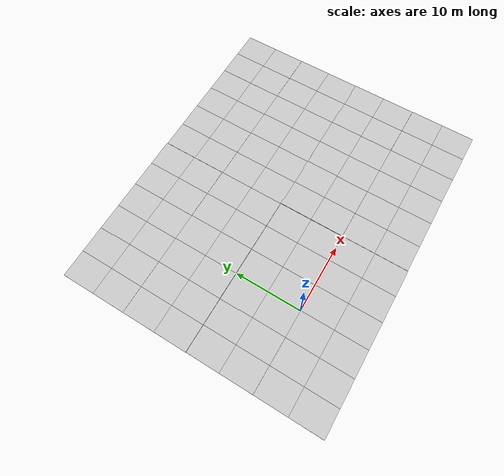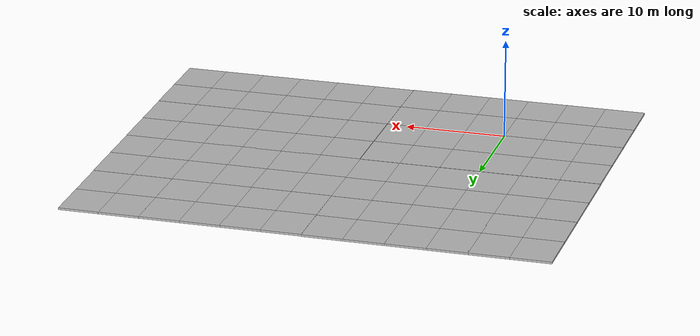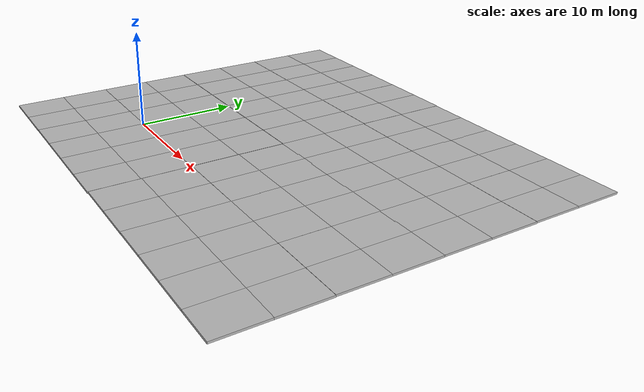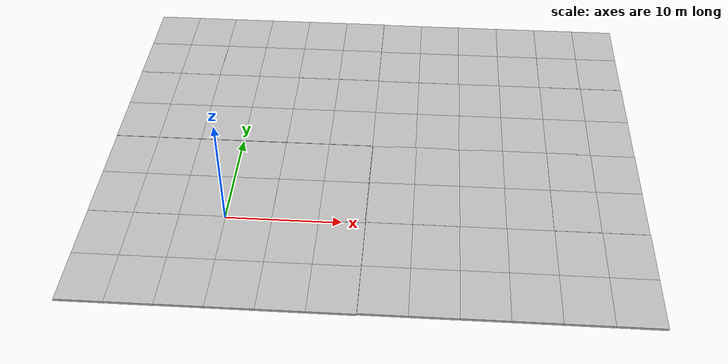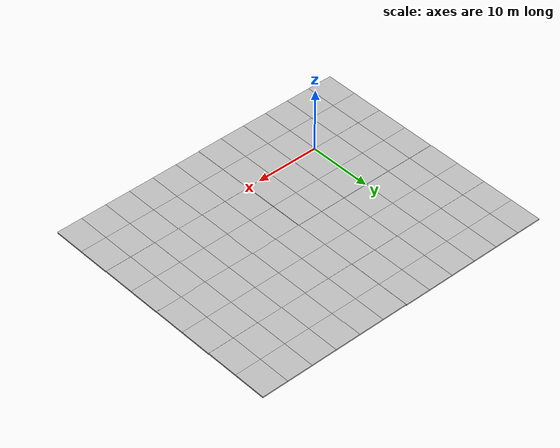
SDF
<sdf version="1.6">
 <model name="big_mud">
  <model name="big_mud">
   <model name="mud_box">
    <static>1</static>
    <link name="link">
     <collision name="collision"><geometry><box><size>100 100 0.2</size></box></geometry></collision>
     <visual name="visual_1">
      <pose>-2 2.5 0 0 -0 0</pose>
      <cast_shadows>0</cast_shadows>
      <geometry><box><size>4 5 0.2</size></box></geometry>
      <material>
       <script>
        <uri>model://mud_box/materials/scripts</uri>
        <uri>model://mud_box/materials/textures</uri>
        <name>vrc/mud</name>
       </script>
      </material>
     </visual>
     <visual name="visual_2">
      <pose>2 2.5 0 0 -0 0</pose>
      <cast_shadows>0</cast_shadows>
      <geometry><box><size>4 5 0.2</size></box></geometry>
      <material>
       <script>
        <uri>model://mud_box/materials/scripts</uri>
        <uri>model://mud_box/materials/textures</uri>
        <name>vrc/mud</name>
       </script>
      </material>
     </visual>
     <visual name="visual_3">
      <pose>2 -2.5 0 0 -0 0</pose>
      <cast_shadows>0</cast_shadows>
      <geometry><box><size>4 5 0.2</size></box></geometry>
      <material>
       <script>
        <uri>model://mud_box/materials/scripts</uri>
        <uri>model://mud_box/materials/textures</uri>
        <name>vrc/mud</name>
       </script>
      </material>
     </visual>
     <visual name="visual_4">
      <pose>-2 -2.5 0 0 -0 0</pose>
      <cast_shadows>0</cast_shadows>
      <geometry><box><size>4 5 0.2</size></box></geometry>
      <material>
       <script>
        <uri>model://mud_box/materials/scripts</uri>
        <uri>model://mud_box/materials/textures</uri>
        <name>vrc/mud</name>
       </script>
      </material>
     </visual>
    </link>
    <pose>-0.040479 4.99985 0 0 -0 0</pose>
   </model>
   <model name="mud_box_0">
    <static>1</static>
    <link name="link">
     <collision name="collision"><geometry><box><size>8 10 0.2</size></box></geometry></collision>
     <visual name="visual_1">
      <pose>-2 2.5 0 0 -0 0</pose>
      <cast_shadows>0</cast_shadows>
      <geometry><box><size>4 5 0.2</size></box></geometry>
      <material>
       <script>
        <uri>model://mud_box/materials/scripts</uri>
        <uri>model://mud_box/materials/textures</uri>
        <name>vrc/mud</name>
       </script>
      </material>
     </visual>
     <visual name="visual_2">
      <pose>2 2.5 0 0 -0 0</pose>
      <cast_shadows>0</cast_shadows>
      <geometry><box><size>4 5 0.2</size></box></geometry>
      <material>
       <script>
        <uri>model://mud_box/materials/scripts</uri>
        <uri>model://mud_box/materials/textures</uri>
        <name>vrc/mud</name>
       </script>
      </material>
     </visual>
     <visual name="visual_3">
      <pose>2 -2.5 0 0 -0 0</pose>
      <cast_shadows>0</cast_shadows>
      <geometry><box><size>4 5 0.2</size></box></geometry>
      <material>
       <script>
        <uri>model://mud_box/materials/scripts</uri>
        <uri>model://mud_box/materials/textures</uri>
        <name>vrc/mud</name>
       </script>
      </material>
     </visual>
     <visual name="visual_4">
      <pose>-2 -2.5 0 0 -0 0</pose>
      <cast_shadows>0</cast_shadows>
      <geometry><box><size>4 5 0.2</size></box></geometry>
      <material>
       <script>
        <uri>model://mud_box/materials/scripts</uri>
        <uri>model://mud_box/materials/textures</uri>
        <name>vrc/mud</name>
       </script>
      </material>
     </visual>
    </link>
    <pose>7.96088 5.01054 0 0 -0 0</pose>
   </model>
   <model name="mud_box_clone">
    <static>1</static>
    <link name="link">
     <collision name="collision"><geometry><box><size>8 10 0.2</size></box></geometry></collision>
     <visual name="visual_1">
      <pose>-2 2.5 0 0 -0 0</pose>
      <cast_shadows>0</cast_shadows>
      <geometry><box><size>4 5 0.2</size></box></geometry>
      <material>
       <script>
        <uri>model://mud_box/materials/scripts</uri>
        <uri>model://mud_box/materials/textures</uri>
        <name>vrc/mud</name>
       </script>
      </material>
     </visual>
     <visual name="visual_2">
      <pose>2 2.5 0 0 -0 0</pose>
      <cast_shadows>0</cast_shadows>
      <geometry><box><size>4 5 0.2</size></box></geometry>
      <material>
       <script>
        <uri>model://mud_box/materials/scripts</uri>
        <uri>model://mud_box/materials/textures</uri>
        <name>vrc/mud</name>
       </script>
      </material>
     </visual>
     <visual name="visual_3">
      <pose>2 -2.5 0 0 -0 0</pose>
      <cast_shadows>0</cast_shadows>
      <geometry><box><size>4 5 0.2</size></box></geometry>
      <material>
       <script>
        <uri>model://mud_box/materials/scripts</uri>
        <uri>model://mud_box/materials/textures</uri>
        <name>vrc/mud</name>
       </script>
      </material>
     </visual>
     <visual name="visual_4">
      <pose>-2 -2.5 0 0 -0 0</pose>
      <cast_shadows>0</cast_shadows>
      <geometry><box><size>4 5 0.2</size></box></geometry>
      <material>
       <script>
        <uri>model://mud_box/materials/scripts</uri>
        <uri>model://mud_box/materials/textures</uri>
        <name>vrc/mud</name>
       </script>
      </material>
     </visual>
    </link>
    <pose>8.00404 -5.00098 0 0 -0 0</pose>
   </model>
   <model name="mud_box_clone_0">
    <static>1</static>
    <link name="link">
     <collision name="collision"><geometry><box><size>8 10 0.2</size></box></geometry></collision>
     <visual name="visual_1">
      <pose>-2 2.5 0 0 -0 0</pose>
      <cast_shadows>0</cast_shadows>
      <geometry><box><size>4 5 0.2</size></box></geometry>
      <material>
       <script>
        <uri>model://mud_box/materials/scripts</uri>
        <uri>model://mud_box/materials/textures</uri>
        <name>vrc/mud</name>
       </script>
      </material>
     </visual>
     <visual name="visual_2">
      <pose>2 2.5 0 0 -0 0</pose>
      <cast_shadows>0</cast_shadows>
      <geometry><box><size>4 5 0.2</size></box></geometry>
      <material>
       <script>
        <uri>model://mud_box/materials/scripts</uri>
        <uri>model://mud_box/materials/textures</uri>
        <name>vrc/mud</name>
       </script>
      </material>
     </visual>
     <visual name="visual_3">
      <pose>2 -2.5 0 0 -0 0</pose>
      <cast_shadows>0</cast_shadows>
      <geometry><box><size>4 5 0.2</size></box></geometry>
      <material>
       <script>
        <uri>model://mud_box/materials/scripts</uri>
        <uri>model://mud_box/materials/textures</uri>
        <name>vrc/mud</name>
       </script>
      </material>
     </visual>
     <visual name="visual_4">
      <pose>-2 -2.5 0 0 -0 0</pose>
      <cast_shadows>0</cast_shadows>
      <geometry><box><size>4 5 0.2</size></box></geometry>
      <material>
       <script>
        <uri>model://mud_box/materials/scripts</uri>
        <uri>model://mud_box/materials/textures</uri>
        <name>vrc/mud</name>
       </script>
      </material>
     </visual>
    </link>
    <pose>-7.97159 4.99756 0 0 -0 0</pose>
   </model>
   <model name="mud_box_clone_0_clone">
    <static>1</static>
    <link name="link">
     <collision name="collision"><geometry><box><size>8 10 0.2</size></box></geometry></collision>
     <visual name="visual_1">
      <pose>-2 2.5 0 0 -0 0</pose>
      <cast_shadows>0</cast_shadows>
      <geometry><box><size>4 5 0.2</size></box></geometry>
      <material>
       <script>
        <uri>model://mud_box/materials/scripts</uri>
        <uri>model://mud_box/materials/textures</uri>
        <name>vrc/mud</name>
       </script>
      </material>
     </visual>
     <visual name="visual_2">
      <pose>2 2.5 0 0 -0 0</pose>
      <cast_shadows>0</cast_shadows>
      <geometry><box><size>4 5 0.2</size></box></geometry>
      <material>
       <script>
        <uri>model://mud_box/materials/scripts</uri>
        <uri>model://mud_box/materials/textures</uri>
        <name>vrc/mud</name>
       </script>
      </material>
     </visual>
     <visual name="visual_3">
      <pose>2 -2.5 0 0 -0 0</pose>
      <cast_shadows>0</cast_shadows>
      <geometry><box><size>4 5 0.2</size></box></geometry>
      <material>
       <script>
        <uri>model://mud_box/materials/scripts</uri>
        <uri>model://mud_box/materials/textures</uri>
        <name>vrc/mud</name>
       </script>
      </material>
     </visual>
     <visual name="visual_4">
      <pose>-2 -2.5 0 0 -0 0</pose>
      <cast_shadows>0</cast_shadows>
      <geometry><box><size>4 5 0.2</size></box></geometry>
      <material>
       <script>
        <uri>model://mud_box/materials/scripts</uri>
        <uri>model://mud_box/materials/textures</uri>
        <name>vrc/mud</name>
       </script>
      </material>
     </visual>
    </link>
    <pose>-7.96387 -5.00926 0 0 -0 0</pose>
   </model>
   <model name="mud_box_clone_clone">
    <static>1</static>
    <link name="link">
     <collision name="collision"><geometry><box><size>8 10 0.2</size></box></geometry></collision>
     <visual name="visual_1">
      <pose>-2 2.5 0 0 -0 0</pose>
      <cast_shadows>0</cast_shadows>
      <geometry><box><size>4 5 0.2</size></box></geometry>
      <material>
       <script>
        <uri>model://mud_box/materials/scripts</uri>
        <uri>model://mud_box/materials/textures</uri>
        <name>vrc/mud</name>
       </script>
      </material>
     </visual>
     <visual name="visual_2">
      <pose>2 2.5 0 0 -0 0</pose>
      <cast_shadows>0</cast_shadows>
      <geometry><box><size>4 5 0.2</size></box></geometry>
      <material>
       <script>
        <uri>model://mud_box/materials/scripts</uri>
        <uri>model://mud_box/materials/textures</uri>
        <name>vrc/mud</name>
       </script>
      </material>
     </visual>
     <visual name="visual_3">
      <pose>2 -2.5 0 0 -0 0</pose>
      <cast_shadows>0</cast_shadows>
      <geometry><box><size>4 5 0.2</size></box></geometry>
      <material>
       <script>
        <uri>model://mud_box/materials/scripts</uri>
        <uri>model://mud_box/materials/textures</uri>
        <name>vrc/mud</name>
       </script>
      </material>
     </visual>
     <visual name="visual_4">
      <pose>-2 -2.5 0 0 -0 0</pose>
      <cast_shadows>0</cast_shadows>
      <geometry><box><size>4 5 0.2</size></box></geometry>
      <material>
       <script>
        <uri>model://mud_box/materials/scripts</uri>
        <uri>model://mud_box/materials/textures</uri>
        <name>vrc/mud</name>
       </script>
      </material>
     </visual>
    </link>
    <pose>0.011012 -4.9977 0 0 -0 0</pose>
   </model>
   <static>0</static>
   <pose>-0.037889 20.0397 0 0 -0 0</pose>
  </model>
  <model name="big_mud_0">
   <model name="mud_box">
    <static>1</static>
    <link name="link">
     <collision name="collision"><geometry><box><size>8 10 0.2</size></box></geometry></collision>
     <visual name="visual_1">
      <pose>-2 2.5 0 0 -0 0</pose>
      <cast_shadows>0</cast_shadows>
      <geometry><box><size>4 5 0.2</size></box></geometry>
      <material>
       <script>
        <uri>model://mud_box/materials/scripts</uri>
        <uri>model://mud_box/materials/textures</uri>
        <name>vrc/mud</name>
       </script>
      </material>
     </visual>
     <visual name="visual_2">
      <pose>2 2.5 0 0 -0 0</pose>
      <cast_shadows>0</cast_shadows>
      <geometry><box><size>4 5 0.2</size></box></geometry>
      <material>
       <script>
        <uri>model://mud_box/materials/scripts</uri>
        <uri>model://mud_box/materials/textures</uri>
        <name>vrc/mud</name>
       </script>
      </material>
     </visual>
     <visual name="visual_3">
      <pose>2 -2.5 0 0 -0 0</pose>
      <cast_shadows>0</cast_shadows>
      <geometry><box><size>4 5 0.2</size></box></geometry>
      <material>
       <script>
        <uri>model://mud_box/materials/scripts</uri>
        <uri>model://mud_box/materials/textures</uri>
        <name>vrc/mud</name>
       </script>
      </material>
     </visual>
     <visual name="visual_4">
      <pose>-2 -2.5 0 0 -0 0</pose>
      <cast_shadows>0</cast_shadows>
      <geometry><box><size>4 5 0.2</size></box></geometry>
      <material>
       <script>
        <uri>model://mud_box/materials/scripts</uri>
        <uri>model://mud_box/materials/textures</uri>
        <name>vrc/mud</name>
       </script>
      </material>
     </visual>
    </link>
    <pose>-0.040479 4.99985 0 0 -0 0</pose>
   </model>
   <model name="mud_box_0">
    <static>1</static>
    <link name="link">
     <collision name="collision"><geometry><box><size>8 10 0.2</size></box></geometry></collision>
     <visual name="visual_1">
      <pose>-2 2.5 0 0 -0 0</pose>
      <cast_shadows>0</cast_shadows>
      <geometry><box><size>4 5 0.2</size></box></geometry>
      <material>
       <script>
        <uri>model://mud_box/materials/scripts</uri>
        <uri>model://mud_box/materials/textures</uri>
        <name>vrc/mud</name>
       </script>
      </material>
     </visual>
     <visual name="visual_2">
      <pose>2 2.5 0 0 -0 0</pose>
      <cast_shadows>0</cast_shadows>
      <geometry><box><size>4 5 0.2</size></box></geometry>
      <material>
       <script>
        <uri>model://mud_box/materials/scripts</uri>
        <uri>model://mud_box/materials/textures</uri>
        <name>vrc/mud</name>
       </script>
      </material>
     </visual>
     <visual name="visual_3">
      <pose>2 -2.5 0 0 -0 0</pose>
      <cast_shadows>0</cast_shadows>
      <geometry><box><size>4 5 0.2</size></box></geometry>
      <material>
       <script>
        <uri>model://mud_box/materials/scripts</uri>
        <uri>model://mud_box/materials/textures</uri>
        <name>vrc/mud</name>
       </script>
      </material>
     </visual>
     <visual name="visual_4">
      <pose>-2 -2.5 0 0 -0 0</pose>
      <cast_shadows>0</cast_shadows>
      <geometry><box><size>4 5 0.2</size></box></geometry>
      <material>
       <script>
        <uri>model://mud_box/materials/scripts</uri>
        <uri>model://mud_box/materials/textures</uri>
        <name>vrc/mud</name>
       </script>
      </material>
     </visual>
    </link>
    <pose>7.96088 5.01054 0 0 -0 0</pose>
   </model>
   <model name="mud_box_clone">
    <static>1</static>
    <link name="link">
     <collision name="collision"><geometry><box><size>8 10 0.2</size></box></geometry></collision>
     <visual name="visual_1">
      <pose>-2 2.5 0 0 -0 0</pose>
      <cast_shadows>0</cast_shadows>
      <geometry><box><size>4 5 0.2</size></box></geometry>
      <material>
       <script>
        <uri>model://mud_box/materials/scripts</uri>
        <uri>model://mud_box/materials/textures</uri>
        <name>vrc/mud</name>
       </script>
      </material>
     </visual>
     <visual name="visual_2">
      <pose>2 2.5 0 0 -0 0</pose>
      <cast_shadows>0</cast_shadows>
      <geometry><box><size>4 5 0.2</size></box></geometry>
      <material>
       <script>
        <uri>model://mud_box/materials/scripts</uri>
        <uri>model://mud_box/materials/textures</uri>
        <name>vrc/mud</name>
       </script>
      </material>
     </visual>
     <visual name="visual_3">
      <pose>2 -2.5 0 0 -0 0</pose>
      <cast_shadows>0</cast_shadows>
      <geometry><box><size>4 5 0.2</size></box></geometry>
      <material>
       <script>
        <uri>model://mud_box/materials/scripts</uri>
        <uri>model://mud_box/materials/textures</uri>
        <name>vrc/mud</name>
       </script>
      </material>
     </visual>
     <visual name="visual_4">
      <pose>-2 -2.5 0 0 -0 0</pose>
      <cast_shadows>0</cast_shadows>
      <geometry><box><size>4 5 0.2</size></box></geometry>
      <material>
       <script>
        <uri>model://mud_box/materials/scripts</uri>
        <uri>model://mud_box/materials/textures</uri>
        <name>vrc/mud</name>
       </script>
      </material>
     </visual>
    </link>
    <pose>8.00404 -5.00098 0 0 -0 0</pose>
   </model>
   <model name="mud_box_clone_0">
    <static>1</static>
    <link name="link">
     <collision name="collision"><geometry><box><size>8 10 0.2</size></box></geometry></collision>
     <visual name="visual_1">
      <pose>-2 2.5 0 0 -0 0</pose>
      <cast_shadows>0</cast_shadows>
      <geometry><box><size>4 5 0.2</size></box></geometry>
      <material>
       <script>
        <uri>model://mud_box/materials/scripts</uri>
        <uri>model://mud_box/materials/textures</uri>
        <name>vrc/mud</name>
       </script>
      </material>
     </visual>
     <visual name="visual_2">
      <pose>2 2.5 0 0 -0 0</pose>
      <cast_shadows>0</cast_shadows>
      <geometry><box><size>4 5 0.2</size></box></geometry>
      <material>
       <script>
        <uri>model://mud_box/materials/scripts</uri>
        <uri>model://mud_box/materials/textures</uri>
        <name>vrc/mud</name>
       </script>
      </material>
     </visual>
     <visual name="visual_3">
      <pose>2 -2.5 0 0 -0 0</pose>
      <cast_shadows>0</cast_shadows>
      <geometry><box><size>4 5 0.2</size></box></geometry>
      <material>
       <script>
        <uri>model://mud_box/materials/scripts</uri>
        <uri>model://mud_box/materials/textures</uri>
        <name>vrc/mud</name>
       </script>
      </material>
     </visual>
     <visual name="visual_4">
      <pose>-2 -2.5 0 0 -0 0</pose>
      <cast_shadows>0</cast_shadows>
      <geometry><box><size>4 5 0.2</size></box></geometry>
      <material>
       <script>
        <uri>model://mud_box/materials/scripts</uri>
        <uri>model://mud_box/materials/textures</uri>
        <name>vrc/mud</name>
       </script>
      </material>
     </visual>
    </link>
    <pose>-7.97159 4.99756 0 0 -0 0</pose>
   </model>
   <model name="mud_box_clone_0_clone">
    <static>1</static>
    <link name="link">
     <collision name="collision"><geometry><box><size>8 10 0.2</size></box></geometry></collision>
     <visual name="visual_1">
      <pose>-2 2.5 0 0 -0 0</pose>
      <cast_shadows>0</cast_shadows>
      <geometry><box><size>4 5 0.2</size></box></geometry>
      <material>
       <script>
        <uri>model://mud_box/materials/scripts</uri>
        <uri>model://mud_box/materials/textures</uri>
        <name>vrc/mud</name>
       </script>
      </material>
     </visual>
     <visual name="visual_2">
      <pose>2 2.5 0 0 -0 0</pose>
      <cast_shadows>0</cast_shadows>
      <geometry><box><size>4 5 0.2</size></box></geometry>
      <material>
       <script>
        <uri>model://mud_box/materials/scripts</uri>
        <uri>model://mud_box/materials/textures</uri>
        <name>vrc/mud</name>
       </script>
      </material>
     </visual>
     <visual name="visual_3">
      <pose>2 -2.5 0 0 -0 0</pose>
      <cast_shadows>0</cast_shadows>
      <geometry><box><size>4 5 0.2</size></box></geometry>
      <material>
       <script>
        <uri>model://mud_box/materials/scripts</uri>
        <uri>model://mud_box/materials/textures</uri>
        <name>vrc/mud</name>
       </script>
      </material>
     </visual>
     <visual name="visual_4">
      <pose>-2 -2.5 0 0 -0 0</pose>
      <cast_shadows>0</cast_shadows>
      <geometry><box><size>4 5 0.2</size></box></geometry>
      <material>
       <script>
        <uri>model://mud_box/materials/scripts</uri>
        <uri>model://mud_box/materials/textures</uri>
        <name>vrc/mud</name>
       </script>
      </material>
     </visual>
    </link>
    <pose>-7.96387 -5.00926 0 0 -0 0</pose>
   </model>
   <model name="mud_box_clone_clone">
    <static>1</static>
    <link name="link">
     <collision name="collision"><geometry><box><size>8 10 0.2</size></box></geometry></collision>
     <visual name="visual_1">
      <pose>-2 2.5 0 0 -0 0</pose>
      <cast_shadows>0</cast_shadows>
      <geometry><box><size>4 5 0.2</size></box></geometry>
      <material>
       <script>
        <uri>model://mud_box/materials/scripts</uri>
        <uri>model://mud_box/materials/textures</uri>
        <name>vrc/mud</name>
       </script>
      </material>
     </visual>
     <visual name="visual_2">
      <pose>2 2.5 0 0 -0 0</pose>
      <cast_shadows>0</cast_shadows>
      <geometry><box><size>4 5 0.2</size></box></geometry>
      <material>
       <script>
        <uri>model://mud_box/materials/scripts</uri>
        <uri>model://mud_box/materials/textures</uri>
        <name>vrc/mud</name>
       </script>
      </material>
     </visual>
     <visual name="visual_3">
      <pose>2 -2.5 0 0 -0 0</pose>
      <cast_shadows>0</cast_shadows>
      <geometry><box><size>4 5 0.2</size></box></geometry>
      <material>
       <script>
        <uri>model://mud_box/materials/scripts</uri>
        <uri>model://mud_box/materials/textures</uri>
        <name>vrc/mud</name>
       </script>
      </material>
     </visual>
     <visual name="visual_4">
      <pose>-2 -2.5 0 0 -0 0</pose>
      <cast_shadows>0</cast_shadows>
      <geometry><box><size>4 5 0.2</size></box></geometry>
      <material>
       <script>
        <uri>model://mud_box/materials/scripts</uri>
        <uri>model://mud_box/materials/textures</uri>
        <name>vrc/mud</name>
       </script>
      </material>
     </visual>
    </link>
    <pose>0.011012 -4.9977 0 0 -0 0</pose>
   </model>
   <static>0</static>
   <pose>23.9817 0.073412 0 0 -0 0</pose>
  </model>
  <model name="big_mud_1">
   <model name="mud_box">
    <static>1</static>
    <link name="link">
     <collision name="collision"><geometry><box><size>8 10 0.2</size></box></geometry></collision>
     <visual name="visual_1">
      <pose>-2 2.5 0 0 -0 0</pose>
      <cast_shadows>0</cast_shadows>
      <geometry><box><size>4 5 0.2</size></box></geometry>
      <material>
       <script>
        <uri>model://mud_box/materials/scripts</uri>
        <uri>model://mud_box/materials/textures</uri>
        <name>vrc/mud</name>
       </script>
      </material>
     </visual>
     <visual name="visual_2">
      <pose>2 2.5 0 0 -0 0</pose>
      <cast_shadows>0</cast_shadows>
      <geometry><box><size>4 5 0.2</size></box></geometry>
      <material>
       <script>
        <uri>model://mud_box/materials/scripts</uri>
        <uri>model://mud_box/materials/textures</uri>
        <name>vrc/mud</name>
       </script>
      </material>
     </visual>
     <visual name="visual_3">
      <pose>2 -2.5 0 0 -0 0</pose>
      <cast_shadows>0</cast_shadows>
      <geometry><box><size>4 5 0.2</size></box></geometry>
      <material>
       <script>
        <uri>model://mud_box/materials/scripts</uri>
        <uri>model://mud_box/materials/textures</uri>
        <name>vrc/mud</name>
       </script>
      </material>
     </visual>
     <visual name="visual_4">
      <pose>-2 -2.5 0 0 -0 0</pose>
      <cast_shadows>0</cast_shadows>
      <geometry><box><size>4 5 0.2</size></box></geometry>
      <material>
       <script>
        <uri>model://mud_box/materials/scripts</uri>
        <uri>model://mud_box/materials/textures</uri>
        <name>vrc/mud</name>
       </script>
      </material>
     </visual>
    </link>
    <pose>-0.040479 4.99985 0 0 -0 0</pose>
   </model>
   <model name="mud_box_0">
    <static>1</static>
    <link name="link">
     <collision name="collision"><geometry><box><size>8 10 0.2</size></box></geometry></collision>
     <visual name="visual_1">
      <pose>-2 2.5 0 0 -0 0</pose>
      <cast_shadows>0</cast_shadows>
      <geometry><box><size>4 5 0.2</size></box></geometry>
      <material>
       <script>
        <uri>model://mud_box/materials/scripts</uri>
        <uri>model://mud_box/materials/textures</uri>
        <name>vrc/mud</name>
       </script>
      </material>
     </visual>
     <visual name="visual_2">
      <pose>2 2.5 0 0 -0 0</pose>
      <cast_shadows>0</cast_shadows>
      <geometry><box><size>4 5 0.2</size></box></geometry>
      <material>
       <script>
        <uri>model://mud_box/materials/scripts</uri>
        <uri>model://mud_box/materials/textures</uri>
        <name>vrc/mud</name>
       </script>
      </material>
     </visual>
     <visual name="visual_3">
      <pose>2 -2.5 0 0 -0 0</pose>
      <cast_shadows>0</cast_shadows>
      <geometry><box><size>4 5 0.2</size></box></geometry>
      <material>
       <script>
        <uri>model://mud_box/materials/scripts</uri>
        <uri>model://mud_box/materials/textures</uri>
        <name>vrc/mud</name>
       </script>
      </material>
     </visual>
     <visual name="visual_4">
      <pose>-2 -2.5 0 0 -0 0</pose>
      <cast_shadows>0</cast_shadows>
      <geometry><box><size>4 5 0.2</size></box></geometry>
      <material>
       <script>
        <uri>model://mud_box/materials/scripts</uri>
        <uri>model://mud_box/materials/textures</uri>
        <name>vrc/mud</name>
       </script>
      </material>
     </visual>
    </link>
    <pose>7.96088 5.01054 0 0 -0 0</pose>
   </model>
   <model name="mud_box_clone">
    <static>1</static>
    <link name="link">
     <collision name="collision"><geometry><box><size>8 10 0.2</size></box></geometry></collision>
     <visual name="visual_1">
      <pose>-2 2.5 0 0 -0 0</pose>
      <cast_shadows>0</cast_shadows>
      <geometry><box><size>4 5 0.2</size></box></geometry>
      <material>
       <script>
        <uri>model://mud_box/materials/scripts</uri>
        <uri>model://mud_box/materials/textures</uri>
        <name>vrc/mud</name>
       </script>
      </material>
     </visual>
     <visual name="visual_2">
      <pose>2 2.5 0 0 -0 0</pose>
      <cast_shadows>0</cast_shadows>
      <geometry><box><size>4 5 0.2</size></box></geometry>
      <material>
       <script>
        <uri>model://mud_box/materials/scripts</uri>
        <uri>model://mud_box/materials/textures</uri>
        <name>vrc/mud</name>
       </script>
      </material>
     </visual>
     <visual name="visual_3">
      <pose>2 -2.5 0 0 -0 0</pose>
      <cast_shadows>0</cast_shadows>
      <geometry><box><size>4 5 0.2</size></box></geometry>
      <material>
       <script>
        <uri>model://mud_box/materials/scripts</uri>
        <uri>model://mud_box/materials/textures</uri>
        <name>vrc/mud</name>
       </script>
      </material>
     </visual>
     <visual name="visual_4">
      <pose>-2 -2.5 0 0 -0 0</pose>
      <cast_shadows>0</cast_shadows>
      <geometry><box><size>4 5 0.2</size></box></geometry>
      <material>
       <script>
        <uri>model://mud_box/materials/scripts</uri>
        <uri>model://mud_box/materials/textures</uri>
        <name>vrc/mud</name>
       </script>
      </material>
     </visual>
    </link>
    <pose>8.00404 -5.00098 0 0 -0 0</pose>
   </model>
   <model name="mud_box_clone_0">
    <static>1</static>
    <link name="link">
     <collision name="collision"><geometry><box><size>8 10 0.2</size></box></geometry></collision>
     <visual name="visual_1">
      <pose>-2 2.5 0 0 -0 0</pose>
      <cast_shadows>0</cast_shadows>
      <geometry><box><size>4 5 0.2</size></box></geometry>
      <material>
       <script>
        <uri>model://mud_box/materials/scripts</uri>
        <uri>model://mud_box/materials/textures</uri>
        <name>vrc/mud</name>
       </script>
      </material>
     </visual>
     <visual name="visual_2">
      <pose>2 2.5 0 0 -0 0</pose>
      <cast_shadows>0</cast_shadows>
      <geometry><box><size>4 5 0.2</size></box></geometry>
      <material>
       <script>
        <uri>model://mud_box/materials/scripts</uri>
        <uri>model://mud_box/materials/textures</uri>
        <name>vrc/mud</name>
       </script>
      </material>
     </visual>
     <visual name="visual_3">
      <pose>2 -2.5 0 0 -0 0</pose>
      <cast_shadows>0</cast_shadows>
      <geometry><box><size>4 5 0.2</size></box></geometry>
      <material>
       <script>
        <uri>model://mud_box/materials/scripts</uri>
        <uri>model://mud_box/materials/textures</uri>
        <name>vrc/mud</name>
       </script>
      </material>
     </visual>
     <visual name="visual_4">
      <pose>-2 -2.5 0 0 -0 0</pose>
      <cast_shadows>0</cast_shadows>
      <geometry><box><size>4 5 0.2</size></box></geometry>
      <material>
       <script>
        <uri>model://mud_box/materials/scripts</uri>
        <uri>model://mud_box/materials/textures</uri>
        <name>vrc/mud</name>
       </script>
      </material>
     </visual>
    </link>
    <pose>-7.97159 4.99756 0 0 -0 0</pose>
   </model>
   <model name="mud_box_clone_0_clone">
    <static>1</static>
    <link name="link">
     <collision name="collision"><geometry><box><size>8 10 0.2</size></box></geometry></collision>
     <visual name="visual_1">
      <pose>-2 2.5 0 0 -0 0</pose>
      <cast_shadows>0</cast_shadows>
      <geometry><box><size>4 5 0.2</size></box></geometry>
      <material>
       <script>
        <uri>model://mud_box/materials/scripts</uri>
        <uri>model://mud_box/materials/textures</uri>
        <name>vrc/mud</name>
       </script>
      </material>
     </visual>
     <visual name="visual_2">
      <pose>2 2.5 0 0 -0 0</pose>
      <cast_shadows>0</cast_shadows>
      <geometry><box><size>4 5 0.2</size></box></geometry>
      <material>
       <script>
        <uri>model://mud_box/materials/scripts</uri>
        <uri>model://mud_box/materials/textures</uri>
        <name>vrc/mud</name>
       </script>
      </material>
     </visual>
     <visual name="visual_3">
      <pose>2 -2.5 0 0 -0 0</pose>
      <cast_shadows>0</cast_shadows>
      <geometry><box><size>4 5 0.2</size></box></geometry>
      <material>
       <script>
        <uri>model://mud_box/materials/scripts</uri>
        <uri>model://mud_box/materials/textures</uri>
        <name>vrc/mud</name>
       </script>
      </material>
     </visual>
     <visual name="visual_4">
      <pose>-2 -2.5 0 0 -0 0</pose>
      <cast_shadows>0</cast_shadows>
      <geometry><box><size>4 5 0.2</size></box></geometry>
      <material>
       <script>
        <uri>model://mud_box/materials/scripts</uri>
        <uri>model://mud_box/materials/textures</uri>
        <name>vrc/mud</name>
       </script>
      </material>
     </visual>
    </link>
    <pose>-7.96387 -5.00926 0 0 -0 0</pose>
   </model>
   <model name="mud_box_clone_clone">
    <static>1</static>
    <link name="link">
     <collision name="collision"><geometry><box><size>8 10 0.2</size></box></geometry></collision>
     <visual name="visual_1">
      <pose>-2 2.5 0 0 -0 0</pose>
      <cast_shadows>0</cast_shadows>
      <geometry><box><size>4 5 0.2</size></box></geometry>
      <material>
       <script>
        <uri>model://mud_box/materials/scripts</uri>
        <uri>model://mud_box/materials/textures</uri>
        <name>vrc/mud</name>
       </script>
      </material>
     </visual>
     <visual name="visual_2">
      <pose>2 2.5 0 0 -0 0</pose>
      <cast_shadows>0</cast_shadows>
      <geometry><box><size>4 5 0.2</size></box></geometry>
      <material>
       <script>
        <uri>model://mud_box/materials/scripts</uri>
        <uri>model://mud_box/materials/textures</uri>
        <name>vrc/mud</name>
       </script>
      </material>
     </visual>
     <visual name="visual_3">
      <pose>2 -2.5 0 0 -0 0</pose>
      <cast_shadows>0</cast_shadows>
      <geometry><box><size>4 5 0.2</size></box></geometry>
      <material>
       <script>
        <uri>model://mud_box/materials/scripts</uri>
        <uri>model://mud_box/materials/textures</uri>
        <name>vrc/mud</name>
       </script>
      </material>
     </visual>
     <visual name="visual_4">
      <pose>-2 -2.5 0 0 -0 0</pose>
      <cast_shadows>0</cast_shadows>
      <geometry><box><size>4 5 0.2</size></box></geometry>
      <material>
       <script>
        <uri>model://mud_box/materials/scripts</uri>
        <uri>model://mud_box/materials/textures</uri>
        <name>vrc/mud</name>
       </script>
      </material>
     </visual>
    </link>
    <pose>0.011012 -4.9977 0 0 -0 0</pose>
   </model>
   <static>0</static>
   <pose>23.9065 19.9843 0 0 -0 0</pose>
  </model>
  <model name="mud_box">
   <static>1</static>
   <link name="link">
    <collision name="collision"><geometry><box><size>8 10 0.2</size></box></geometry></collision>
    <visual name="visual_1">
     <pose>-2 2.5 0 0 -0 0</pose>
     <cast_shadows>0</cast_shadows>
     <geometry><box><size>4 5 0.2</size></box></geometry>
     <material>
      <script>
       <uri>model://mud_box/materials/scripts</uri>
       <uri>model://mud_box/materials/textures</uri>
       <name>vrc/mud</name>
      </script>
     </material>
    </visual>
    <visual name="visual_2">
     <pose>2 2.5 0 0 -0 0</pose>
     <cast_shadows>0</cast_shadows>
     <geometry><box><size>4 5 0.2</size></box></geometry>
     <material>
      <script>
       <uri>model://mud_box/materials/scripts</uri>
       <uri>model://mud_box/materials/textures</uri>
       <name>vrc/mud</name>
      </script>
     </material>
    </visual>
    <visual name="visual_3">
     <pose>2 -2.5 0 0 -0 0</pose>
     <cast_shadows>0</cast_shadows>
     <geometry><box><size>4 5 0.2</size></box></geometry>
     <material>
      <script>
       <uri>model://mud_box/materials/scripts</uri>
       <uri>model://mud_box/materials/textures</uri>
       <name>vrc/mud</name>
      </script>
     </material>
    </visual>
    <visual name="visual_4">
     <pose>-2 -2.5 0 0 -0 0</pose>
     <cast_shadows>0</cast_shadows>
     <geometry><box><size>4 5 0.2</size></box></geometry>
     <material>
      <script>
       <uri>model://mud_box/materials/scripts</uri>
       <uri>model://mud_box/materials/textures</uri>
       <name>vrc/mud</name>
      </script>
     </material>
    </visual>
   </link>
   <pose>-0.040479 4.99985 0 0 -0 0</pose>
  </model>
  <model name="mud_box_0">
   <static>1</static>
   <link name="link">
    <collision name="collision"><geometry><box><size>8 10 0.2</size></box></geometry></collision>
    <visual name="visual_1">
     <pose>-2 2.5 0 0 -0 0</pose>
     <cast_shadows>0</cast_shadows>
     <geometry><box><size>4 5 0.2</size></box></geometry>
     <material>
      <script>
       <uri>model://mud_box/materials/scripts</uri>
       <uri>model://mud_box/materials/textures</uri>
       <name>vrc/mud</name>
      </script>
     </material>
    </visual>
    <visual name="visual_2">
     <pose>2 2.5 0 0 -0 0</pose>
     <cast_shadows>0</cast_shadows>
     <geometry><box><size>4 5 0.2</size></box></geometry>
     <material>
      <script>
       <uri>model://mud_box/materials/scripts</uri>
       <uri>model://mud_box/materials/textures</uri>
       <name>vrc/mud</name>
      </script>
     </material>
    </visual>
    <visual name="visual_3">
     <pose>2 -2.5 0 0 -0 0</pose>
     <cast_shadows>0</cast_shadows>
     <geometry><box><size>4 5 0.2</size></box></geometry>
     <material>
      <script>
       <uri>model://mud_box/materials/scripts</uri>
       <uri>model://mud_box/materials/textures</uri>
       <name>vrc/mud</name>
      </script>
     </material>
    </visual>
    <visual name="visual_4">
     <pose>-2 -2.5 0 0 -0 0</pose>
     <cast_shadows>0</cast_shadows>
     <geometry><box><size>4 5 0.2</size></box></geometry>
     <material>
      <script>
       <uri>model://mud_box/materials/scripts</uri>
       <uri>model://mud_box/materials/textures</uri>
       <name>vrc/mud</name>
      </script>
     </material>
    </visual>
   </link>
   <pose>7.96088 5.01054 0 0 -0 0</pose>
  </model>
  <model name="mud_box_clone">
   <static>1</static>
   <link name="link">
    <collision name="collision"><geometry><box><size>8 10 0.2</size></box></geometry></collision>
    <visual name="visual_1">
     <pose>-2 2.5 0 0 -0 0</pose>
     <cast_shadows>0</cast_shadows>
     <geometry><box><size>4 5 0.2</size></box></geometry>
     <material>
      <script>
       <uri>model://mud_box/materials/scripts</uri>
       <uri>model://mud_box/materials/textures</uri>
       <name>vrc/mud</name>
      </script>
     </material>
    </visual>
    <visual name="visual_2">
     <pose>2 2.5 0 0 -0 0</pose>
     <cast_shadows>0</cast_shadows>
     <geometry><box><size>4 5 0.2</size></box></geometry>
     <material>
      <script>
       <uri>model://mud_box/materials/scripts</uri>
       <uri>model://mud_box/materials/textures</uri>
       <name>vrc/mud</name>
      </script>
     </material>
    </visual>
    <visual name="visual_3">
     <pose>2 -2.5 0 0 -0 0</pose>
     <cast_shadows>0</cast_shadows>
     <geometry><box><size>4 5 0.2</size></box></geometry>
     <material>
      <script>
       <uri>model://mud_box/materials/scripts</uri>
       <uri>model://mud_box/materials/textures</uri>
       <name>vrc/mud</name>
      </script>
     </material>
    </visual>
    <visual name="visual_4">
     <pose>-2 -2.5 0 0 -0 0</pose>
     <cast_shadows>0</cast_shadows>
     <geometry><box><size>4 5 0.2</size></box></geometry>
     <material>
      <script>
       <uri>model://mud_box/materials/scripts</uri>
       <uri>model://mud_box/materials/textures</uri>
       <name>vrc/mud</name>
      </script>
     </material>
    </visual>
   </link>
   <pose>8.00404 -5.00098 0 0 -0 0</pose>
  </model>
  <model name="mud_box_clone_0">
   <static>1</static>
   <link name="link">
    <collision name="collision"><geometry><box><size>8 10 0.2</size></box></geometry></collision>
    <visual name="visual_1">
     <pose>-2 2.5 0 0 -0 0</pose>
     <cast_shadows>0</cast_shadows>
     <geometry><box><size>4 5 0.2</size></box></geometry>
     <material>
      <script>
       <uri>model://mud_box/materials/scripts</uri>
       <uri>model://mud_box/materials/textures</uri>
       <name>vrc/mud</name>
      </script>
     </material>
    </visual>
    <visual name="visual_2">
     <pose>2 2.5 0 0 -0 0</pose>
     <cast_shadows>0</cast_shadows>
     <geometry><box><size>4 5 0.2</size></box></geometry>
     <material>
      <script>
       <uri>model://mud_box/materials/scripts</uri>
       <uri>model://mud_box/materials/textures</uri>
       <name>vrc/mud</name>
      </script>
     </material>
    </visual>
    <visual name="visual_3">
     <pose>2 -2.5 0 0 -0 0</pose>
     <cast_shadows>0</cast_shadows>
     <geometry><box><size>4 5 0.2</size></box></geometry>
     <material>
      <script>
       <uri>model://mud_box/materials/scripts</uri>
       <uri>model://mud_box/materials/textures</uri>
       <name>vrc/mud</name>
      </script>
     </material>
    </visual>
    <visual name="visual_4">
     <pose>-2 -2.5 0 0 -0 0</pose>
     <cast_shadows>0</cast_shadows>
     <geometry><box><size>4 5 0.2</size></box></geometry>
     <material>
      <script>
       <uri>model://mud_box/materials/scripts</uri>
       <uri>model://mud_box/materials/textures</uri>
       <name>vrc/mud</name>
      </script>
     </material>
    </visual>
   </link>
   <pose>-7.97159 4.99756 0 0 -0 0</pose>
  </model>
  <model name="mud_box_clone_0_clone">
   <static>1</static>
   <link name="link">
    <collision name="collision"><geometry><box><size>8 10 0.2</size></box></geometry></collision>
    <visual name="visual_1">
     <pose>-2 2.5 0 0 -0 0</pose>
     <cast_shadows>0</cast_shadows>
     <geometry><box><size>4 5 0.2</size></box></geometry>
     <material>
      <script>
       <uri>model://mud_box/materials/scripts</uri>
       <uri>model://mud_box/materials/textures</uri>
       <name>vrc/mud</name>
      </script>
     </material>
    </visual>
    <visual name="visual_2">
     <pose>2 2.5 0 0 -0 0</pose>
     <cast_shadows>0</cast_shadows>
     <geometry><box><size>4 5 0.2</size></box></geometry>
     <material>
      <script>
       <uri>model://mud_box/materials/scripts</uri>
       <uri>model://mud_box/materials/textures</uri>
       <name>vrc/mud</name>
      </script>
     </material>
    </visual>
    <visual name="visual_3">
     <pose>2 -2.5 0 0 -0 0</pose>
     <cast_shadows>0</cast_shadows>
     <geometry><box><size>4 5 0.2</size></box></geometry>
     <material>
      <script>
       <uri>model://mud_box/materials/scripts</uri>
       <uri>model://mud_box/materials/textures</uri>
       <name>vrc/mud</name>
      </script>
     </material>
    </visual>
    <visual name="visual_4">
     <pose>-2 -2.5 0 0 -0 0</pose>
     <cast_shadows>0</cast_shadows>
     <geometry><box><size>4 5 0.2</size></box></geometry>
     <material>
      <script>
       <uri>model://mud_box/materials/scripts</uri>
       <uri>model://mud_box/materials/textures</uri>
       <name>vrc/mud</name>
      </script>
     </material>
    </visual>
   </link>
   <pose>-7.96387 -5.00926 0 0 -0 0</pose>
  </model>
  <model name="mud_box_clone_clone">
   <static>1</static>
   <link name="link">
    <collision name="collision"><geometry><box><size>8 10 0.2</size></box></geometry></collision>
    <visual name="visual_1">
     <pose>-2 2.5 0 0 -0 0</pose>
     <cast_shadows>0</cast_shadows>
     <geometry><box><size>4 5 0.2</size></box></geometry>
     <material>
      <script>
       <uri>model://mud_box/materials/scripts</uri>
       <uri>model://mud_box/materials/textures</uri>
       <name>vrc/mud</name>
      </script>
     </material>
    </visual>
    <visual name="visual_2">
     <pose>2 2.5 0 0 -0 0</pose>
     <cast_shadows>0</cast_shadows>
     <geometry><box><size>4 5 0.2</size></box></geometry>
     <material>
      <script>
       <uri>model://mud_box/materials/scripts</uri>
       <uri>model://mud_box/materials/textures</uri>
       <name>vrc/mud</name>
      </script>
     </material>
    </visual>
    <visual name="visual_3">
     <pose>2 -2.5 0 0 -0 0</pose>
     <cast_shadows>0</cast_shadows>
     <geometry><box><size>4 5 0.2</size></box></geometry>
     <material>
      <script>
       <uri>model://mud_box/materials/scripts</uri>
       <uri>model://mud_box/materials/textures</uri>
       <name>vrc/mud</name>
      </script>
     </material>
    </visual>
    <visual name="visual_4">
     <pose>-2 -2.5 0 0 -0 0</pose>
     <cast_shadows>0</cast_shadows>
     <geometry><box><size>4 5 0.2</size></box></geometry>
     <material>
      <script>
       <uri>model://mud_box/materials/scripts</uri>
       <uri>model://mud_box/materials/textures</uri>
       <name>vrc/mud</name>
      </script>
     </material>
    </visual>
   </link>
   <pose>0.011012 -4.9977 0 0 -0 0</pose>
  </model>
  <static>0</static>
 </model>
</sdf>
